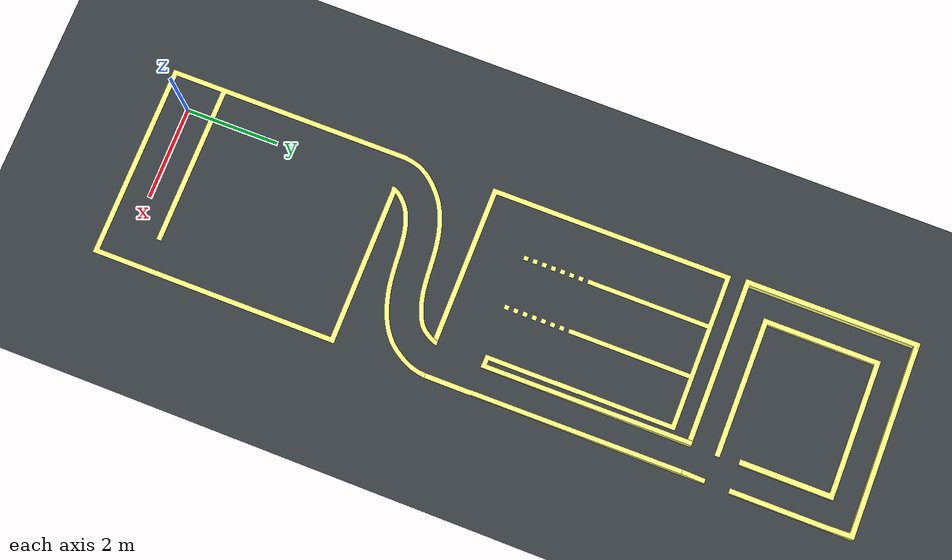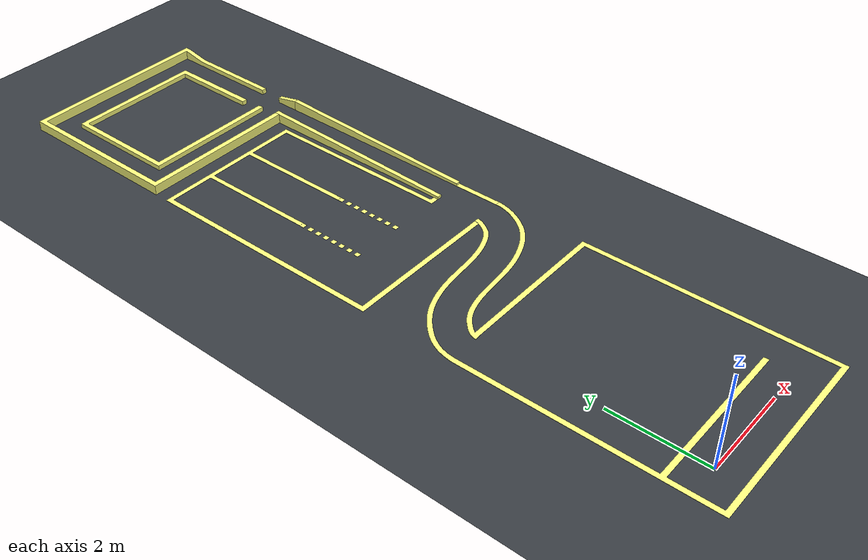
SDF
<?xml version="1.0" ?>
<sdf version="1.5">
    <world name="empty">

        <physics type="ode">
            <max_step_size>0.001</max_step_size>
            <real_time_factor>1</real_time_factor>
            <real_time_update_rate>1000</real_time_update_rate>
            <gravity>0 0 -9.81</gravity>
            <ode>
                <solver>
                <type>quick</type>
                <min_step_size>0.0001</min_step_size>
                <iters>50</iters>
                <sor>1.3</sor>
                </solver>
                <constraints>
                <cfm>0.0</cfm>
                <erp>0.2</erp>
                </constraints>
            </ode>
        </physics>

        <scene>
        </scene>

        <include>
            <uri>model://sun</uri>
        </include>

        <model name="ground_plane">
            <static>true</static>
            <link name="link">
                <collision name="collision">
                    <geometry>
                    <plane>
                        <normal>0 0 1</normal>
                        <size>100 100</size>
                    </plane>
                    </geometry>
                <surface>
                    <friction>
                        <ode>
                        <mu>100</mu>
                        <mu2>50</mu2>
                        </ode>
                    </friction>
                </surface>
                </collision>
                <visual name="visual">
                    <cast_shadows>false</cast_shadows>
                    <geometry>
                    <plane>
                        <normal>0 0 1</normal>
                        <size>100 100</size>
                    </plane>
                    </geometry>
                    <material>
                        <ambient>0.22 0.24 0.26 1</ambient>
                        <diffuse>0.22 0.24 0.26 1</diffuse>
                    </material>
                </visual>
            </link>
        </model>

        <model name='race'>
            <pose>1.5 5.87 1.18 0 0 -1.57</pose>
            <static>true</static>

            <link name='1area_border_00'>
            <pose>0 0 0 0 0 0</pose>
            <visual name="1area_border_visual">
                <geometry>
                    <mesh>
                        <uri>/home/cyberdog_sim/src/cyberdog_simulator/cyberdog_gazebo/model/race2026_meshes/1_border.stl</uri>
                        <scale>0.01 0.01 0.01</scale>
                    </mesh>
                </geometry>
                <material>
                    <ambient>1 1 0.5 1</ambient>
                    <diffuse>1 1 0.5 1</diffuse>
                </material>
                </visual>
            </link>

            <link name='2aea_border'>
                <collision name="2aea_border_collision">
                    <geometry>
                        <mesh>
                    <uri>/home/cyberdog_sim/src/cyberdog_simulator/cyberdog_gazebo/model/race2026_meshes/2_border.stl</uri>
                    <scale>0.01 0.01 0.01</scale>
                    </mesh>
                    </geometry>
                </collision>
            <visual name="2aea_border_visual">
                <geometry>
                    <mesh>
                    <uri>/home/cyberdog_sim/src/cyberdog_simulator/cyberdog_gazebo/model/race2026_meshes/2_border.stl</uri>
                    <scale>0.01 0.01 0.01</scale>
                </mesh>
                </geometry>
                <material>
                    <ambient>1 1 0.5 1</ambient>
                    <diffuse>1 1 0.5 1</diffuse>
                </material>
                </visual>
            </link>

            <link name='3aea_border'>
                <collision name="3aea_border_collision">
                    <geometry>
                        <mesh>
                    <uri>/home/cyberdog_sim/src/cyberdog_simulator/cyberdog_gazebo/model/race2026_meshes/3_border.stl</uri>
                    <scale>0.01 0.01 0.01</scale>
                    </mesh>
                    </geometry>
                </collision>
            <visual name="3aea_border_visual">
                <geometry>
                    <mesh>
                    <uri>/home/cyberdog_sim/src/cyberdog_simulator/cyberdog_gazebo/model/race2026_meshes/3_border.stl</uri>
                    <scale>0.01 0.01 0.01</scale>
                </mesh>
                </geometry>
                <material>
                    <ambient>1 1 0.5 1</ambient>
                    <diffuse>1 1 0.5 1</diffuse>
                </material>
                </visual>
            </link>

        </model>

    </world>
</sdf>
